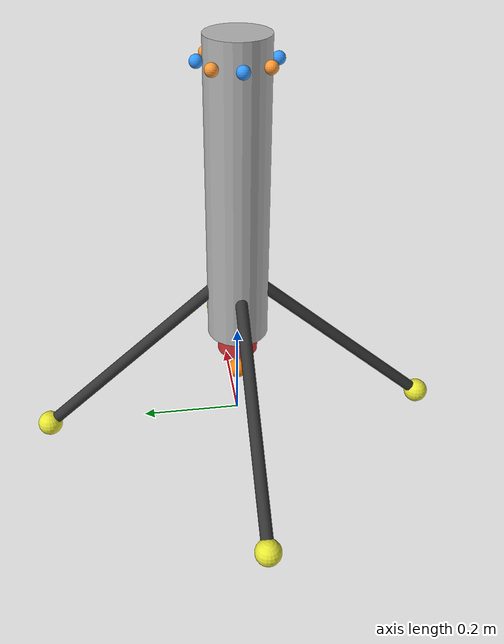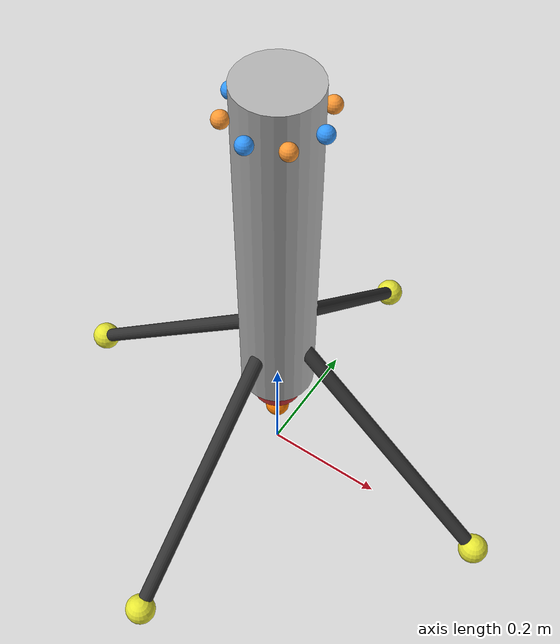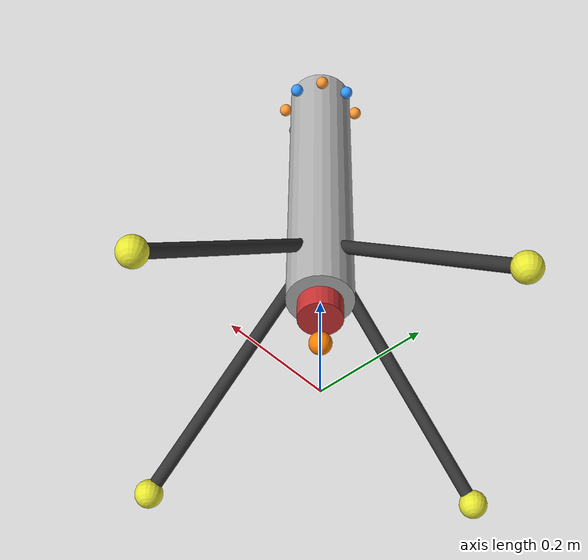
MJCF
<mujoco model="vtvl_hopper_lunar">
    <compiler angle="degree" coordinate="local"/>

    <option gravity="0 0 -1.62"
            timestep="0.002"
            integrator="implicitfast"
            iterations="80"/>

    <asset>
        <material name="body_mat" rgba="0.7 0.7 0.7 1"/>
        <material name="leg_mat" rgba="0.2 0.2 0.2 1"/>
        <material name="foot_mat" rgba="0.9 0.9 0.2 1"/>
        <material name="engine_mat" rgba="0.8 0.2 0.2 1"/>
    </asset>

    <worldbody>
        <body name="hopper" pos="0 0 0.355">
            <freejoint/>

            <inertial pos="0 0 0"
                      mass="1.63"
                      diaginertia="0.025 0.025 0.008"/>

            <site name="COM"
                  pos="0 0 0"
                  size="0.02"
                  rgba="1 0 0 1"/>

            <geom name="main_body"
                  type="cylinder"
                  fromto="0 0 -0.150 0 0 0.445"
                  size="0.06"
                  material="body_mat"
                  contype="1"
                  conaffinity="1"/>

            <geom name="leg1"
                  type="capsule"
                  fromto="0 0 -0.005 0.4 0 -0.355"
                  size="0.012"
                  material="leg_mat"
                  contype="0"
                  conaffinity="0"/>
            <geom name="foot1_geom"
                  type="sphere"
                  pos="0.4 0 -0.355"
                  size="0.025"
                  material="foot_mat"
                  contype="1"
                  conaffinity="1"/>
            <site name="foot1"
                  pos="0.4 0 -0.355"
                  size="0.015"
                  rgba="1 0 0 1"/>

            <geom name="leg2"
                  type="capsule"
                  fromto="0 0 -0.005 -0.4 0 -0.355"
                  size="0.012"
                  material="leg_mat"
                  contype="0"
                  conaffinity="0"/>
            <geom name="foot2_geom"
                  type="sphere"
                  pos="-0.4 0 -0.355"
                  size="0.025"
                  material="foot_mat"
                  contype="1"
                  conaffinity="1"/>
            <site name="foot2"
                  pos="-0.4 0 -0.355"
                  size="0.015"
                  rgba="0 1 0 1"/>

            <geom name="leg3"
                  type="capsule"
                  fromto="0 0 -0.005 0 0.4 -0.355"
                  size="0.012"
                  material="leg_mat"
                  contype="0"
                  conaffinity="0"/>
            <geom name="foot3_geom"
                  type="sphere"
                  pos="0 0.4 -0.355"
                  size="0.025"
                  material="foot_mat"
                  contype="1"
                  conaffinity="1"/>
            <site name="foot3"
                  pos="0 0.4 -0.355"
                  size="0.015"
                  rgba="0 0 1 1"/>

            <geom name="leg4"
                  type="capsule"
                  fromto="0 0 -0.005 0 -0.4 -0.355"
                  size="0.012"
                  material="leg_mat"
                  contype="0"
                  conaffinity="0"/>
            <geom name="foot4_geom"
                  type="sphere"
                  pos="0 -0.4 -0.355"
                  size="0.025"
                  material="foot_mat"
                  contype="1"
                  conaffinity="1"/>
            <site name="foot4"
                  pos="0 -0.4 -0.355"
                  size="0.015"
                  rgba="1 1 0 1"/>

            <geom name="engine"
                  type="cylinder"
                  pos="0 0 -0.175"
                  size="0.04 0.02"
                  material="engine_mat"
                  contype="0"
                  conaffinity="0"/>
            <site name="thrust_site"
                  pos="0 0 -0.250"
                  size="0.02"
                  rgba="1 0.5 0 1"/>

            <site name="rcs_0" pos="0.070 0.000 0.40" size="0.012" rgba="0.2 0.6 1 1"/>   <!-- CCW -->
            <site name="rcs_1" pos="0.0495 0.0495 0.40" size="0.012" rgba="1 0.6 0.2 1"/> <!-- CW -->
            <site name="rcs_2" pos="0.000 0.070 0.40" size="0.012" rgba="0.2 0.6 1 1"/>   <!-- CCW -->
            <site name="rcs_3" pos="-0.0495 0.0495 0.40" size="0.012" rgba="1 0.6 0.2 1"/><!-- CW -->
            <site name="rcs_4" pos="-0.070 0.000 0.40" size="0.012" rgba="0.2 0.6 1 1"/>  <!-- CCW -->
            <site name="rcs_5" pos="-0.0495 -0.0495 0.40" size="0.012" rgba="1 0.6 0.2 1"/><!-- CW -->
            <site name="rcs_6" pos="0.000 -0.070 0.40" size="0.012" rgba="0.2 0.6 1 1"/>  <!-- CCW -->
            <site name="rcs_7" pos="0.0495 -0.0495 0.40" size="0.012" rgba="1 0.6 0.2 1"/><!-- CW -->
        </body>
    </worldbody>
</mujoco>
